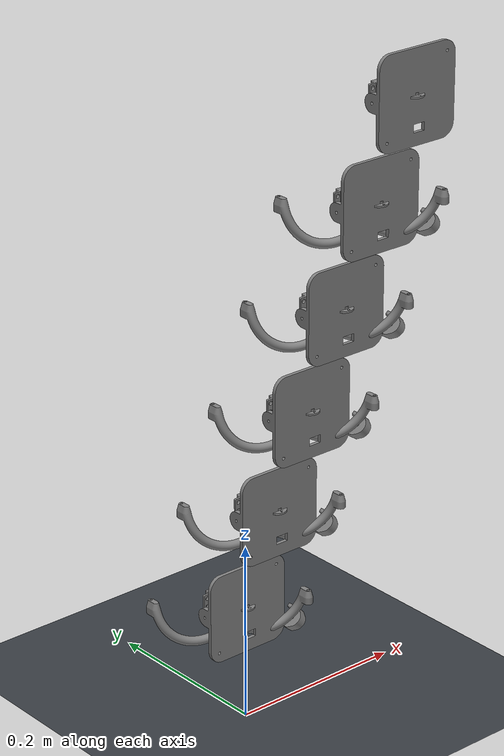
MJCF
<mujoco model="snakebot_scene">
  <include file="snakebot.xml"/>

  <visual>
    <headlight diffuse="0.8 0.8 0.8" ambient="0.35 0.35 0.35" specular="0.08 0.08 0.08"/>
    <rgba haze="0.12 0.18 0.24 1"/>
    <global azimuth="150" elevation="-18"/>
  </visual>

  <asset>
    <texture type="skybox" builtin="gradient" rgb1="0.4 0.55 0.75" rgb2="0.02 0.02 0.04" width="512" height="3072"/>
    <texture name="ground_tex" type="2d" builtin="checker" rgb1="0.18 0.2 0.22" rgb2="0.26 0.28 0.3" width="512" height="512"/>
    <material name="ground_mat" texture="ground_tex" texrepeat="10 10" texuniform="true" reflectance="0.2"/>
  </asset>

  <worldbody>
    <light name="sun" pos="0 0 4" dir="0 0 -1" directional="true"/>
    <light name="fill" pos="-2 -1 2.5" dir="0.8 0.4 -1" directional="true" diffuse="0.4 0.4 0.4"/>
    <geom name="floor" type="plane" size="4 4 0.1" pos="0 0 0" material="ground_mat" friction="1.2 0.03 0.01"/>
    <camera name="overview" pos="-1.1 -1.1 0.85" xyaxes="0.7 -0.7 0 0.35 0.35 0.87"/>
    <camera name="side" pos="0 -1.4 0.5" xyaxes="1 0 0 0 0.35 0.94"/>
  </worldbody>
</mujoco>

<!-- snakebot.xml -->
<mujoco model="snakebot">
  <compiler angle="radian" meshdir="assets" autolimits="true"/>
  <option timestep="0.002" gravity="0 0 -9.81" iterations="80" integrator="implicitfast"/>
  <default>
    <default class="snake">
      <joint damping="0.150000" frictionloss="0.030000" armature="0.003000"/>
      <position kp="55" dampratio="1"/>
      <default class="visual">
        <geom type="mesh" contype="0" conaffinity="0" group="2"/>
      </default>
      <default class="collision">
        <geom group="3" friction="1.2 0.03 0.01"/>
      </default>
    </default>
  </default>
  <asset>
    <mesh name="fusioncomponent" file="fusioncomponent.stl"/>
    <mesh name="fusioncomponent__2" file="fusioncomponent__2.stl"/>
    <mesh name="danda_v4" file="danda_v4.stl"/>
    <mesh name="danda_support_v5" file="danda_support_v5.stl"/>
    <mesh name="servo_motor_35kg_motor_v1" file="servo_motor_35kg_motor_v1.stl"/>
    <mesh name="default" file="default.stl"/>
    <material name="plate_mat" rgba="0.9 0.9 0.9 1"/>
    <material name="rod_mat" rgba="0.95 0.95 0.95 1"/>
    <material name="servo_mat" rgba="0.1 0.1 0.15 1"/>
  </asset>
  <worldbody>
    <body name="plate_0" pos="0 0 0.13" childclass="snake">
      <freejoint name="snake_freejoint"/>
      <inertial mass="0.120000" pos="0 0 0" diaginertia="0.00030 0.00030 0.00030"/>
      <site name="head_imu" pos="0 0 0.01" size="0.003"/>
      <geom name="plate_0_collision" type="box" size="0.060000 0.060000 0.008000" class="collision"/>
      <geom name="plate_0_visual" type="mesh" mesh="fusioncomponent" class="visual"/>
      <geom name="plate_0_servo_visual" type="mesh" mesh="servo_motor_35kg_motor_v1" class="visual"/>
      <geom name="plate_0_horn_visual" type="mesh" mesh="default" class="visual"/>
      <body name="module_0_rod_main" pos="0.028000 -0.018000 0.000000">
        <joint name="module_0_servo_a" type="hinge" axis="0 0 1" range="-1.047198 1.047198"/>
        <inertial mass="0.020000" pos="0 0 0.055000" diaginertia="0.00001 0.00001 0.00001"/>
        <geom name="module_0_rod_main_collision" type="capsule" fromto="0 0 0 0 0 0.110000" size="0.006000" class="collision"/>
        <geom name="module_0_rod_main_visual" type="mesh" mesh="danda_v4" class="visual"/>
        <geom name="module_0_rod_main_bracket_visual" type="mesh" mesh="fusioncomponent__2" class="visual"/>
        <body name="plate_1" pos="0 0 0.110000">
          <joint name="module_0_servo_b" type="hinge" axis="1 0 0" range="-1.047198 1.047198"/>
          <inertial mass="0.120000" pos="0 0 0" diaginertia="0.00030 0.00030 0.00030"/>
          <geom name="plate_1_collision" type="box" size="0.060000 0.060000 0.008000" class="collision"/>
          <geom name="plate_1_visual" type="mesh" mesh="fusioncomponent" class="visual"/>
          <geom name="plate_1_servo_visual" type="mesh" mesh="servo_motor_35kg_motor_v1" class="visual"/>
          <geom name="plate_1_horn_visual" type="mesh" mesh="default" class="visual"/>
          <body name="module_1_rod_main" pos="0.028000 -0.018000 0.000000">
            <joint name="module_1_servo_a" type="hinge" axis="0 0 1" range="-1.047198 1.047198"/>
            <inertial mass="0.020000" pos="0 0 0.055000" diaginertia="0.00001 0.00001 0.00001"/>
            <geom name="module_1_rod_main_collision" type="capsule" fromto="0 0 0 0 0 0.110000" size="0.006000" class="collision"/>
            <geom name="module_1_rod_main_visual" type="mesh" mesh="danda_v4" class="visual"/>
            <geom name="module_1_rod_main_bracket_visual" type="mesh" mesh="fusioncomponent__2" class="visual"/>
            <body name="plate_2" pos="0 0 0.110000">
              <joint name="module_1_servo_b" type="hinge" axis="1 0 0" range="-1.047198 1.047198"/>
              <inertial mass="0.120000" pos="0 0 0" diaginertia="0.00030 0.00030 0.00030"/>
              <geom name="plate_2_collision" type="box" size="0.060000 0.060000 0.008000" class="collision"/>
              <geom name="plate_2_visual" type="mesh" mesh="fusioncomponent" class="visual"/>
              <geom name="plate_2_servo_visual" type="mesh" mesh="servo_motor_35kg_motor_v1" class="visual"/>
              <geom name="plate_2_horn_visual" type="mesh" mesh="default" class="visual"/>
              <body name="module_2_rod_main" pos="0.028000 -0.018000 0.000000">
                <joint name="module_2_servo_a" type="hinge" axis="0 0 1" range="-1.047198 1.047198"/>
                <inertial mass="0.020000" pos="0 0 0.055000" diaginertia="0.00001 0.00001 0.00001"/>
                <geom name="module_2_rod_main_collision" type="capsule" fromto="0 0 0 0 0 0.110000" size="0.006000" class="collision"/>
                <geom name="module_2_rod_main_visual" type="mesh" mesh="danda_v4" class="visual"/>
                <geom name="module_2_rod_main_bracket_visual" type="mesh" mesh="fusioncomponent__2" class="visual"/>
                <body name="plate_3" pos="0 0 0.110000">
                  <joint name="module_2_servo_b" type="hinge" axis="1 0 0" range="-1.047198 1.047198"/>
                  <inertial mass="0.120000" pos="0 0 0" diaginertia="0.00030 0.00030 0.00030"/>
                  <geom name="plate_3_collision" type="box" size="0.060000 0.060000 0.008000" class="collision"/>
                  <geom name="plate_3_visual" type="mesh" mesh="fusioncomponent" class="visual"/>
                  <geom name="plate_3_servo_visual" type="mesh" mesh="servo_motor_35kg_motor_v1" class="visual"/>
                  <geom name="plate_3_horn_visual" type="mesh" mesh="default" class="visual"/>
                  <body name="module_3_rod_main" pos="0.028000 -0.018000 0.000000">
                    <joint name="module_3_servo_a" type="hinge" axis="0 0 1" range="-1.047198 1.047198"/>
                    <inertial mass="0.020000" pos="0 0 0.055000" diaginertia="0.00001 0.00001 0.00001"/>
                    <geom name="module_3_rod_main_collision" type="capsule" fromto="0 0 0 0 0 0.110000" size="0.006000" class="collision"/>
                    <geom name="module_3_rod_main_visual" type="mesh" mesh="danda_v4" class="visual"/>
                    <geom name="module_3_rod_main_bracket_visual" type="mesh" mesh="fusioncomponent__2" class="visual"/>
                    <body name="plate_4" pos="0 0 0.110000">
                      <joint name="module_3_servo_b" type="hinge" axis="1 0 0" range="-1.047198 1.047198"/>
                      <inertial mass="0.120000" pos="0 0 0" diaginertia="0.00030 0.00030 0.00030"/>
                      <geom name="plate_4_collision" type="box" size="0.060000 0.060000 0.008000" class="collision"/>
                      <geom name="plate_4_visual" type="mesh" mesh="fusioncomponent" class="visual"/>
                      <geom name="plate_4_servo_visual" type="mesh" mesh="servo_motor_35kg_motor_v1" class="visual"/>
                      <geom name="plate_4_horn_visual" type="mesh" mesh="default" class="visual"/>
                      <body name="module_4_rod_main" pos="0.028000 -0.018000 0.000000">
                        <joint name="module_4_servo_a" type="hinge" axis="0 0 1" range="-1.047198 1.047198"/>
                        <inertial mass="0.020000" pos="0 0 0.055000" diaginertia="0.00001 0.00001 0.00001"/>
                        <geom name="module_4_rod_main_collision" type="capsule" fromto="0 0 0 0 0 0.110000" size="0.006000" class="collision"/>
                        <geom name="module_4_rod_main_visual" type="mesh" mesh="danda_v4" class="visual"/>
                        <geom name="module_4_rod_main_bracket_visual" type="mesh" mesh="fusioncomponent__2" class="visual"/>
                        <body name="plate_5" pos="0 0 0.110000">
                          <joint name="module_4_servo_b" type="hinge" axis="1 0 0" range="-1.047198 1.047198"/>
                          <inertial mass="0.120000" pos="0 0 0" diaginertia="0.00030 0.00030 0.00030"/>
                          <geom name="plate_5_collision" type="box" size="0.060000 0.060000 0.008000" class="collision"/>
                          <geom name="plate_5_visual" type="mesh" mesh="fusioncomponent" class="visual"/>
                          <geom name="plate_5_servo_visual" type="mesh" mesh="servo_motor_35kg_motor_v1" class="visual"/>
                          <geom name="plate_5_horn_visual" type="mesh" mesh="default" class="visual"/>
                        </body>
                      </body>
                      <body name="module_4_rod_support" pos="-0.028000 0.018000 0.000000">
                        <joint name="module_4_support_passive" type="hinge" axis="0 0 1" range="-1.047198 1.047198"/>
                        <inertial mass="0.020000" pos="0 0 0.055000" diaginertia="0.00001 0.00001 0.00001"/>
                        <geom name="module_4_rod_support_collision" type="capsule" fromto="0 0 0 0 0 0.110000" size="0.006000" class="collision"/>
                        <geom name="module_4_rod_support_visual" type="mesh" mesh="danda_support_v5" class="visual"/>
                        <geom name="module_4_rod_support_bracket_visual" type="mesh" mesh="fusioncomponent__2" class="visual"/>
                      </body>
                    </body>
                  </body>
                  <body name="module_3_rod_support" pos="-0.028000 0.018000 0.000000">
                    <joint name="module_3_support_passive" type="hinge" axis="0 0 1" range="-1.047198 1.047198"/>
                    <inertial mass="0.020000" pos="0 0 0.055000" diaginertia="0.00001 0.00001 0.00001"/>
                    <geom name="module_3_rod_support_collision" type="capsule" fromto="0 0 0 0 0 0.110000" size="0.006000" class="collision"/>
                    <geom name="module_3_rod_support_visual" type="mesh" mesh="danda_support_v5" class="visual"/>
                    <geom name="module_3_rod_support_bracket_visual" type="mesh" mesh="fusioncomponent__2" class="visual"/>
                  </body>
                </body>
              </body>
              <body name="module_2_rod_support" pos="-0.028000 0.018000 0.000000">
                <joint name="module_2_support_passive" type="hinge" axis="0 0 1" range="-1.047198 1.047198"/>
                <inertial mass="0.020000" pos="0 0 0.055000" diaginertia="0.00001 0.00001 0.00001"/>
                <geom name="module_2_rod_support_collision" type="capsule" fromto="0 0 0 0 0 0.110000" size="0.006000" class="collision"/>
                <geom name="module_2_rod_support_visual" type="mesh" mesh="danda_support_v5" class="visual"/>
                <geom name="module_2_rod_support_bracket_visual" type="mesh" mesh="fusioncomponent__2" class="visual"/>
              </body>
            </body>
          </body>
          <body name="module_1_rod_support" pos="-0.028000 0.018000 0.000000">
            <joint name="module_1_support_passive" type="hinge" axis="0 0 1" range="-1.047198 1.047198"/>
            <inertial mass="0.020000" pos="0 0 0.055000" diaginertia="0.00001 0.00001 0.00001"/>
            <geom name="module_1_rod_support_collision" type="capsule" fromto="0 0 0 0 0 0.110000" size="0.006000" class="collision"/>
            <geom name="module_1_rod_support_visual" type="mesh" mesh="danda_support_v5" class="visual"/>
            <geom name="module_1_rod_support_bracket_visual" type="mesh" mesh="fusioncomponent__2" class="visual"/>
          </body>
        </body>
      </body>
      <body name="module_0_rod_support" pos="-0.028000 0.018000 0.000000">
        <joint name="module_0_support_passive" type="hinge" axis="0 0 1" range="-1.047198 1.047198"/>
        <inertial mass="0.020000" pos="0 0 0.055000" diaginertia="0.00001 0.00001 0.00001"/>
        <geom name="module_0_rod_support_collision" type="capsule" fromto="0 0 0 0 0 0.110000" size="0.006000" class="collision"/>
        <geom name="module_0_rod_support_visual" type="mesh" mesh="danda_support_v5" class="visual"/>
        <geom name="module_0_rod_support_bracket_visual" type="mesh" mesh="fusioncomponent__2" class="visual"/>
      </body>
    </body>
  </worldbody>
  <equality>
    <connect name="module_0_loop_connect" body1="module_0_rod_support" body2="plate_1" anchor="-0.028000 0.018000 0.110000" solref="0.005 1" solimp="0.95 0.99 0.001"/>
    <connect name="module_1_loop_connect" body1="module_1_rod_support" body2="plate_2" anchor="-0.028000 0.018000 0.110000" solref="0.005 1" solimp="0.95 0.99 0.001"/>
    <connect name="module_2_loop_connect" body1="module_2_rod_support" body2="plate_3" anchor="-0.028000 0.018000 0.110000" solref="0.005 1" solimp="0.95 0.99 0.001"/>
    <connect name="module_3_loop_connect" body1="module_3_rod_support" body2="plate_4" anchor="-0.028000 0.018000 0.110000" solref="0.005 1" solimp="0.95 0.99 0.001"/>
    <connect name="module_4_loop_connect" body1="module_4_rod_support" body2="plate_5" anchor="-0.028000 0.018000 0.110000" solref="0.005 1" solimp="0.95 0.99 0.001"/>
  </equality>
  <actuator>
    <position name="module_0_servo_a_act" joint="module_0_servo_a" class="snake"/>
    <position name="module_0_servo_b_act" joint="module_0_servo_b" class="snake"/>
    <position name="module_1_servo_a_act" joint="module_1_servo_a" class="snake"/>
    <position name="module_1_servo_b_act" joint="module_1_servo_b" class="snake"/>
    <position name="module_2_servo_a_act" joint="module_2_servo_a" class="snake"/>
    <position name="module_2_servo_b_act" joint="module_2_servo_b" class="snake"/>
    <position name="module_3_servo_a_act" joint="module_3_servo_a" class="snake"/>
    <position name="module_3_servo_b_act" joint="module_3_servo_b" class="snake"/>
    <position name="module_4_servo_a_act" joint="module_4_servo_a" class="snake"/>
    <position name="module_4_servo_b_act" joint="module_4_servo_b" class="snake"/>
  </actuator>
  <sensor>
    <accelerometer name="head_acc" site="head_imu"/>
    <gyro name="head_gyro" site="head_imu"/>
    <jointpos name="module_0_servo_a_pos" joint="module_0_servo_a"/>
    <jointvel name="module_0_servo_a_vel" joint="module_0_servo_a"/>
    <jointpos name="module_0_servo_b_pos" joint="module_0_servo_b"/>
    <jointvel name="module_0_servo_b_vel" joint="module_0_servo_b"/>
    <jointpos name="module_1_servo_a_pos" joint="module_1_servo_a"/>
    <jointvel name="module_1_servo_a_vel" joint="module_1_servo_a"/>
    <jointpos name="module_1_servo_b_pos" joint="module_1_servo_b"/>
    <jointvel name="module_1_servo_b_vel" joint="module_1_servo_b"/>
    <jointpos name="module_2_servo_a_pos" joint="module_2_servo_a"/>
    <jointvel name="module_2_servo_a_vel" joint="module_2_servo_a"/>
    <jointpos name="module_2_servo_b_pos" joint="module_2_servo_b"/>
    <jointvel name="module_2_servo_b_vel" joint="module_2_servo_b"/>
    <jointpos name="module_3_servo_a_pos" joint="module_3_servo_a"/>
    <jointvel name="module_3_servo_a_vel" joint="module_3_servo_a"/>
    <jointpos name="module_3_servo_b_pos" joint="module_3_servo_b"/>
    <jointvel name="module_3_servo_b_vel" joint="module_3_servo_b"/>
    <jointpos name="module_4_servo_a_pos" joint="module_4_servo_a"/>
    <jointvel name="module_4_servo_a_vel" joint="module_4_servo_a"/>
    <jointpos name="module_4_servo_b_pos" joint="module_4_servo_b"/>
    <jointvel name="module_4_servo_b_vel" joint="module_4_servo_b"/>
  </sensor>
</mujoco>
